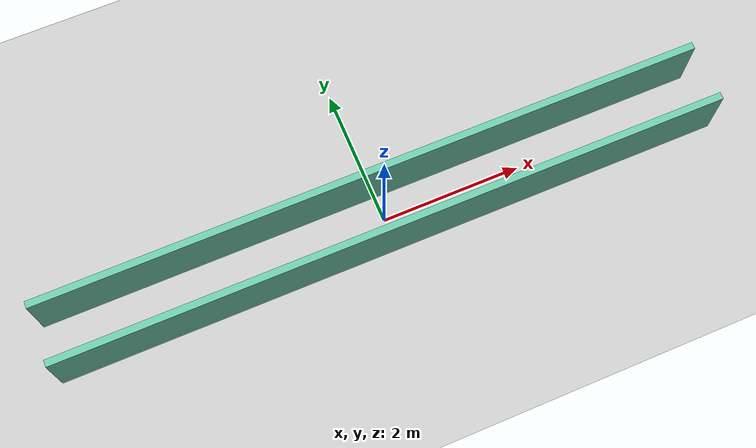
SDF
<sdf version="1.4">
 <world name="default">
  <light name="sun" type="directional">
   <pose>0 0 10 0 -0 0</pose>
   <diffuse>0.8 0.8 0.8 1</diffuse>
   <specular>0.2 0.2 0.2 1</specular>
   <attenuation>
    <range>1000</range>
    <constant>0.9</constant>
    <linear>0.01</linear>
    <quadratic>0.001</quadratic>
   </attenuation>
   <direction>-0.5 0.1 -0.9</direction>
  </light>
  <model name="ground_plane">
   <static>1</static>
   <link name="link">
    <collision name="collision">
     <geometry><plane><normal>0 0 1</normal><size>100 100</size></plane></geometry>
     <surface>
      <friction><ode><mu>10000</mu><mu2>10000</mu2></ode><bullet><mu>10000</mu><mu2>10000</mu2></bullet></friction>
     </surface>
    </collision>
    <visual name="visual">
     <cast_shadows>0</cast_shadows>
     <geometry><plane><normal>0 0 1</normal><size>1000 1000</size></plane></geometry>
     <material>
      <script><uri>file://media/materials/scripts/gazebo.material</uri><name>Gazebo/Grey</name></script>
     </material>
    </visual>
    <velocity_decay><linear>0</linear><angular>0</angular></velocity_decay>
   </link>
  </model>
  <model name="left_wall">
   <pose>0 0.41 0 0 -0 0</pose>
   <link name="Wall_1">
    <collision name="Wall_1_Collision">
     <geometry><box><size>9.5 0.10 0.9</size></box></geometry>
     <pose>0 0 0.45 0 -0 0</pose>
     <surface><friction><ode><mu>10000</mu><mu2>10000</mu2></ode></friction></surface>
    </collision>
    <visual name="Wall_1_Visual">
     <pose>0 0 0.45 0 -0 0</pose>
     <geometry><box><size>9.5 0.10 0.9</size></box></geometry>
     <material>
      <script><uri>file://media/materials/scripts/gazebo.material</uri><name>Gazebo/Grey</name></script>
      <ambient>0.435294 0.796078 0.67451 1</ambient>
     </material>
    </visual>
   </link>
   <static>1</static>
  </model>
  <model name="right_wall">
   <pose>0 -0.41 0 0 -0 0</pose>
   <link name="Wall_2">
    <collision name="Wall_2_Collision">
     <geometry><box><size>9.5 0.10 0.9</size></box></geometry>
     <pose>0 0 0.45 0 -0 0</pose>
     <surface><friction><ode><mu>10000</mu><mu2>10000</mu2></ode></friction></surface>
    </collision>
    <visual name="Wall_2_Visual">
     <pose>0 0 0.45 0 -0 0</pose>
     <geometry><box><size>9.5 0.10 0.9</size></box></geometry>
     <material>
      <script><uri>file://media/materials/scripts/gazebo.material</uri><name>Gazebo/Grey</name></script>
      <ambient>0.435294 0.796078 0.67451 1</ambient>
     </material>
    </visual>
   </link>
   <static>1</static>
  </model>
  <physics type="ode">
   <simbody>
    <accuracy>0.005</accuracy>
    <max_transient_velocity>0.005</max_transient_velocity>
    <contact><stiffness>1e8</stiffness><dissipation>20.0</dissipation></contact>
   </simbody>
   <ode><solver><iters>250</iters></solver></ode>
   <max_step_size>0.001</max_step_size>
   <real_time_factor>1</real_time_factor>
   <real_time_update_rate>1000</real_time_update_rate>
   <gravity>0 0 -9.8</gravity>
  </physics>
  <scene><ambient>0.4 0.4 0.4 1</ambient><background>0.7 0.7 0.7 1</background><shadows>1</shadows></scene>
  <spherical_coordinates>
   <surface_model>EARTH_WGS84</surface_model>
   <latitude_deg>0</latitude_deg>
   <longitude_deg>0</longitude_deg>
   <elevation>0</elevation>
   <heading_deg>0</heading_deg>
  </spherical_coordinates>
 </world>
</sdf>
